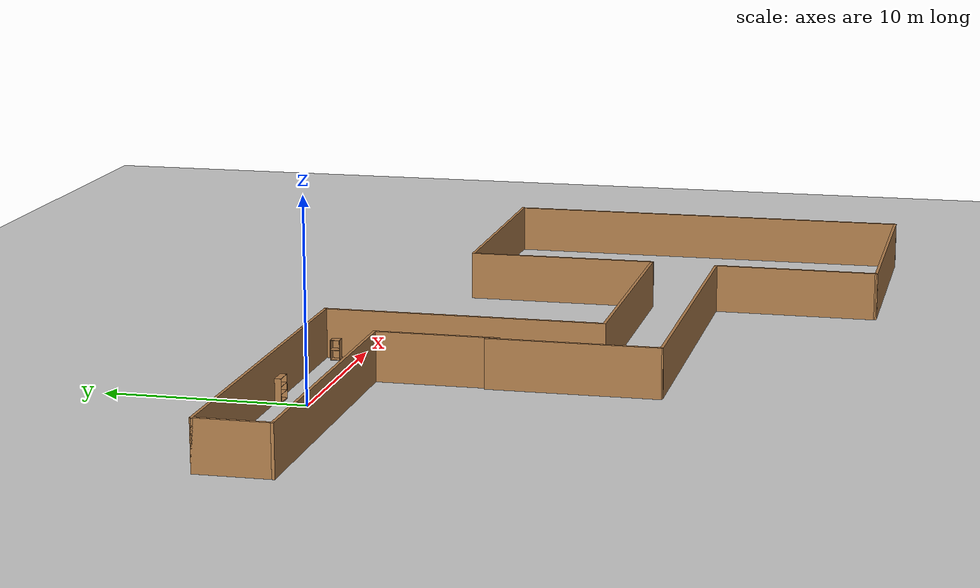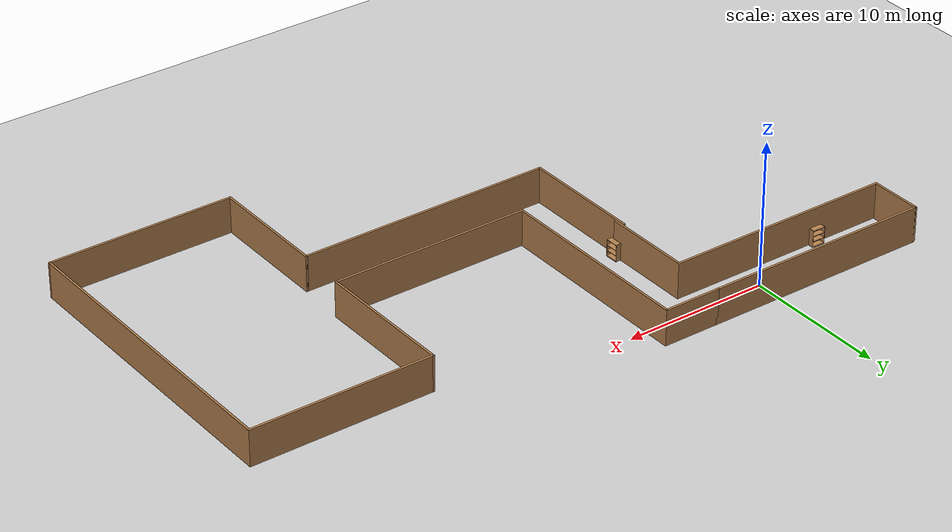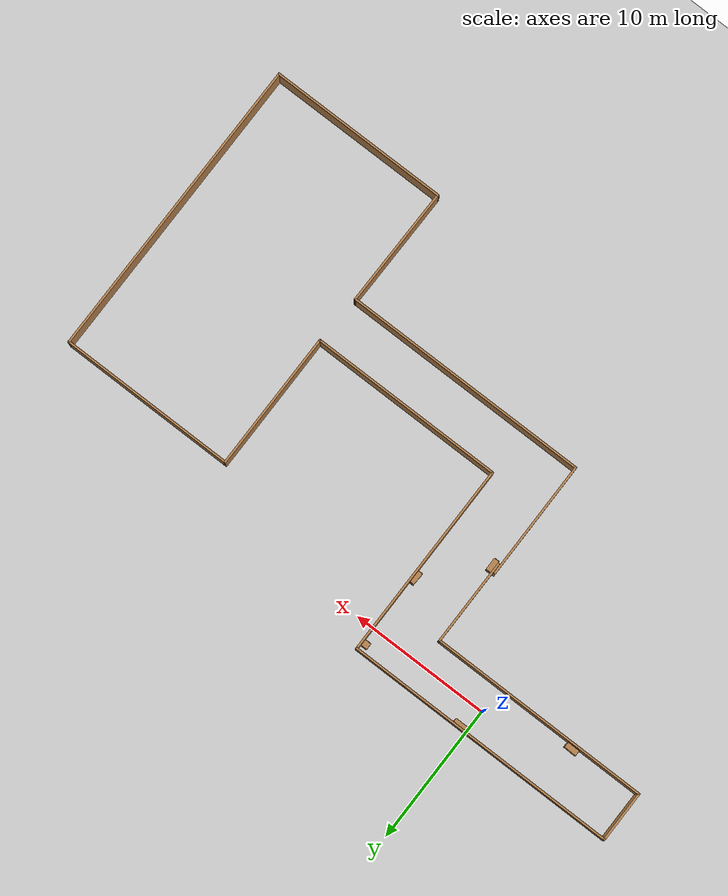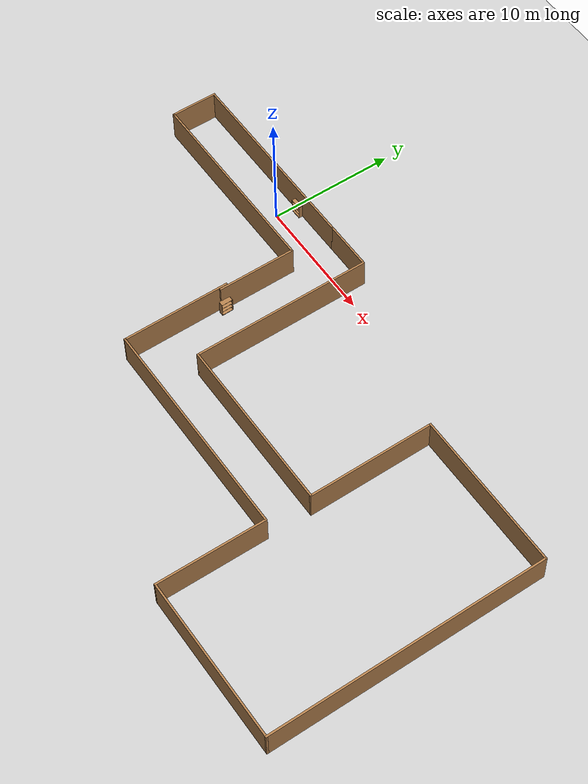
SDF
<sdf version="1.7">
 <world name="default">
  <light name="sun" type="directional">
   <pose>0 0 10 0 -0 0</pose>
   <diffuse>0.8 0.8 0.8 1</diffuse>
   <specular>0.2 0.2 0.2 1</specular>
   <attenuation>
    <range>1000</range>
    <constant>0.9</constant>
    <linear>0.01</linear>
    <quadratic>0.001</quadratic>
   </attenuation>
   <direction>-0.5 0.1 -0.9</direction>
   <spot><inner_angle>0</inner_angle><outer_angle>0</outer_angle><falloff>0</falloff></spot>
  </light>
  <model name="ground_plane">
   <static>1</static>
   <link name="link">
    <collision name="collision">
     <geometry><plane><normal>0 0 1</normal><size>100 100</size></plane></geometry>
     <surface><friction><ode><mu>100</mu><mu2>50</mu2></ode></friction></surface>
    </collision>
    <visual name="visual">
     <cast_shadows>0</cast_shadows>
     <geometry><plane><normal>0 0 1</normal><size>100 100</size></plane></geometry>
     <material>
      <script><uri>file://media/materials/scripts/gazebo.material</uri><name>Gazebo/Grey</name></script>
     </material>
    </visual>
   </link>
  </model>
  <gravity>0 0 -9.8</gravity>
  <magnetic_field>6e-06 2.3e-05 -4.2e-05</magnetic_field>
  <atmosphere type="adiabatic"/>
  <physics type="ode">
   <max_step_size>0.001</max_step_size>
   <real_time_factor>1</real_time_factor>
   <real_time_update_rate>1000</real_time_update_rate>
  </physics>
  <scene><ambient>0.4 0.4 0.4 1</ambient><background>0.7 0.7 0.7 1</background><shadows>1</shadows></scene>
  <audio><device>default</device></audio>
  <spherical_coordinates>
   <surface_model>EARTH_WGS84</surface_model>
   <latitude_deg>0</latitude_deg>
   <longitude_deg>0</longitude_deg>
   <elevation>0</elevation>
   <heading_deg>0</heading_deg>
  </spherical_coordinates>
  <model name="human_follow_project">
   <pose>12.1104 -11.3403 0 0 -0 0</pose>
   <link name="Wall_1">
    <collision name="Wall_1_Collision">
     <geometry><box><size>3.75 0.15 2.5</size></box></geometry>
     <pose>0 0 1.25 0 -0 0</pose>
    </collision>
    <visual name="Wall_1_Visual">
     <pose>0 0 1.25 0 -0 0</pose>
     <geometry><box><size>3.75 0.15 2.5</size></box></geometry>
     <material>
      <script><uri>file://media/materials/scripts/gazebo.material</uri><name>Gazebo/Wood</name></script>
      <ambient>1 1 1 1</ambient>
     </material>
     <meta><layer>0</layer></meta>
    </visual>
    <pose>-23.075 11.2503 0 0 -0 1.5708</pose>
   </link>
   <link name="Wall_10">
    <collision name="Wall_10_Collision">
     <geometry><box><size>10 0.15 2.5</size></box></geometry>
     <pose>0 0 1.25 0 -0 0</pose>
    </collision>
    <visual name="Wall_10_Visual">
     <pose>0 0 1.25 0 -0 0</pose>
     <geometry><box><size>10 0.15 2.5</size></box></geometry>
     <material>
      <script><uri>file://media/materials/scripts/gazebo.material</uri><name>Gazebo/Wood</name></script>
      <ambient>1 1 1 1</ambient>
     </material>
     <meta><layer>0</layer></meta>
    </visual>
    <pose>10.475 3.87526 0 0 -0 1.5708</pose>
   </link>
   <link name="Wall_11">
    <collision name="Wall_11_Collision">
     <geometry><box><size>12.75 0.15 2.5</size></box></geometry>
     <pose>0 0 1.25 0 -0 0</pose>
    </collision>
    <visual name="Wall_11_Visual">
     <pose>0 0 1.25 0 -0 0</pose>
     <geometry><box><size>12.75 0.15 2.5</size></box></geometry>
     <material>
      <script><uri>file://media/materials/scripts/gazebo.material</uri><name>Gazebo/Wood</name></script>
      <ambient>1 1 1 1</ambient>
     </material>
     <meta><layer>0</layer></meta>
    </visual>
    <pose>16.775 8.80026 0 0 -0 0</pose>
   </link>
   <link name="Wall_12">
    <collision name="Wall_12_Collision">
     <geometry><box><size>22 0.15 2.5</size></box></geometry>
     <pose>0 0 1.25 0 -0 0</pose>
    </collision>
    <visual name="Wall_12_Visual">
     <pose>0 0 1.25 0 -0 0</pose>
     <geometry><box><size>22 0.15 2.5</size></box></geometry>
     <material>
      <script><uri>file://media/materials/scripts/gazebo.material</uri><name>Gazebo/Wood</name></script>
      <ambient>1 1 1 1</ambient>
     </material>
     <meta><layer>0</layer></meta>
    </visual>
    <pose>23.075 -2.12474 0 0 -0 -1.5708</pose>
   </link>
   <link name="Wall_13">
    <collision name="Wall_13_Collision">
     <geometry><box><size>13 0.15 2.5</size></box></geometry>
     <pose>0 0 1.25 0 -0 0</pose>
    </collision>
    <visual name="Wall_13_Visual">
     <pose>0 0 1.25 0 -0 0</pose>
     <geometry><box><size>13 0.15 2.5</size></box></geometry>
     <material>
      <script><uri>file://media/materials/scripts/gazebo.material</uri><name>Gazebo/Wood</name></script>
      <ambient>1 1 1 1</ambient>
     </material>
     <meta><layer>0</layer></meta>
    </visual>
    <pose>16.65 -13.0497 0 0 -0 3.14159</pose>
   </link>
   <link name="Wall_14">
    <collision name="Wall_14_Collision">
     <geometry><box><size>8.67267 0.15 2.5</size></box></geometry>
     <pose>0 0 1.25 0 -0 0</pose>
    </collision>
    <visual name="Wall_14_Visual">
     <pose>0 0 1.25 0 -0 0</pose>
     <geometry><box><size>8.67267 0.15 2.5</size></box></geometry>
     <material>
      <script><uri>file://media/materials/scripts/gazebo.material</uri><name>Gazebo/Wood</name></script>
      <ambient>1 1 1 1</ambient>
     </material>
     <meta><layer>0</layer></meta>
    </visual>
    <pose>10.2659 -8.78841 0 0 -0 1.5612</pose>
   </link>
   <link name="Wall_15">
    <collision name="Wall_15_Collision">
     <geometry><box><size>17.75 0.15 2.5</size></box></geometry>
     <pose>0 0 1.25 0 -0 0</pose>
    </collision>
    <visual name="Wall_15_Visual">
     <pose>0 0 1.25 0 -0 0</pose>
     <geometry><box><size>17.75 0.15 2.5</size></box></geometry>
     <material>
      <script><uri>file://media/materials/scripts/gazebo.material</uri><name>Gazebo/Wood</name></script>
      <ambient>1 1 1 1</ambient>
     </material>
     <meta><layer>0</layer></meta>
    </visual>
    <pose>1.425 -4.52707 0 0 -0 3.14159</pose>
   </link>
   <link name="Wall_19">
    <collision name="Wall_19_Collision">
     <geometry><box><size>8.59308 0.15 2.5</size></box></geometry>
     <pose>0 0 1.25 0 -0 0</pose>
    </collision>
    <visual name="Wall_19_Visual">
     <pose>0 0 1.25 0 -0 0</pose>
     <geometry><box><size>8.59308 0.15 2.5</size></box></geometry>
     <material>
      <script><uri>file://media/materials/scripts/gazebo.material</uri><name>Gazebo/Wood</name></script>
      <ambient>1 1 1 1</ambient>
     </material>
     <meta><layer>0</layer></meta>
    </visual>
    <pose>-7.38412 -0.305539 0 0 -0 -1.56864</pose>
   </link>
   <link name="Wall_2">
    <collision name="Wall_2_Collision">
     <geometry><box><size>16 0.15 2.5</size></box></geometry>
     <pose>0 0 1.25 0 -0 0</pose>
    </collision>
    <visual name="Wall_2_Visual">
     <pose>0 0 1.25 0 -0 0</pose>
     <geometry><box><size>16 0.15 2.5</size></box></geometry>
     <material>
      <script><uri>file://media/materials/scripts/gazebo.material</uri><name>Gazebo/Wood</name></script>
      <ambient>1 1 1 1</ambient>
     </material>
     <meta><layer>0</layer></meta>
    </visual>
    <pose>-15.15 13.0503 0 0 -0 0</pose>
   </link>
   <link name="Wall_4">
    <collision name="Wall_4_Collision">
     <geometry><box><size>16 0.15 2.5</size></box></geometry>
     <pose>0 0 1.25 0 -0 0</pose>
    </collision>
    <visual name="Wall_4_Visual">
     <pose>0 0 1.25 0 -0 0</pose>
     <geometry><box><size>16 0.15 2.5</size></box></geometry>
     <material>
      <script><uri>file://media/materials/scripts/gazebo.material</uri><name>Gazebo/Wood</name></script>
      <ambient>1 1 1 1</ambient>
     </material>
     <meta><layer>0</layer></meta>
    </visual>
    <pose>-15.15 9.45026 0 0 -0 0</pose>
   </link>
   <link name="Wall_5">
    <collision name="Wall_5_Collision">
     <geometry><box><size>6.25 0.15 2.5</size></box></geometry>
     <pose>0 0 1.25 0 -0 0</pose>
    </collision>
    <visual name="Wall_5_Visual">
     <pose>0 0 1.25 0 -0 0</pose>
     <geometry><box><size>6.25 0.15 2.5</size></box></geometry>
     <material>
      <script><uri>file://media/materials/scripts/gazebo.material</uri><name>Gazebo/Wood</name></script>
      <ambient>1 1 1 1</ambient>
     </material>
     <meta><layer>0</layer></meta>
    </visual>
    <pose>-7.225 6.40026 0 0 -0 -1.5708</pose>
   </link>
   <link name="Wall_7">
    <collision name="Wall_7_Collision">
     <geometry><box><size>4 0.15 2.5</size></box></geometry>
     <pose>0 0 1.25 0 -0 0</pose>
    </collision>
    <visual name="Wall_7_Visual">
     <pose>0 0 1.25 0 -0 0</pose>
     <geometry><box><size>4 0.15 2.5</size></box></geometry>
     <material>
      <script><uri>file://media/materials/scripts/gazebo.material</uri><name>Gazebo/Wood</name></script>
      <ambient>1 1 1 1</ambient>
     </material>
     <meta><layer>0</layer></meta>
    </visual>
    <pose>-5.3 13.0503 0 0 -0 0</pose>
   </link>
   <link name="Wall_8">
    <collision name="Wall_8_Collision">
     <geometry><box><size>14.25 0.15 2.5</size></box></geometry>
     <pose>0 0 1.25 0 -0 0</pose>
    </collision>
    <visual name="Wall_8_Visual">
     <pose>0 0 1.25 0 -0 0</pose>
     <geometry><box><size>14.25 0.15 2.5</size></box></geometry>
     <material>
      <script><uri>file://media/materials/scripts/gazebo.material</uri><name>Gazebo/Wood</name></script>
      <ambient>1 1 1 1</ambient>
     </material>
     <meta><layer>0</layer></meta>
    </visual>
    <pose>-3.375 6.00026 0 0 -0 -1.5708</pose>
   </link>
   <link name="Wall_9">
    <collision name="Wall_9_Collision">
     <geometry><box><size>14 0.15 2.5</size></box></geometry>
     <pose>0 0 1.25 0 -0 0</pose>
    </collision>
    <visual name="Wall_9_Visual">
     <pose>0 0 1.25 0 -0 0</pose>
     <geometry><box><size>14 0.15 2.5</size></box></geometry>
     <material>
      <script><uri>file://media/materials/scripts/gazebo.material</uri><name>Gazebo/Wood</name></script>
      <ambient>1 1 1 1</ambient>
     </material>
     <meta><layer>0</layer></meta>
    </visual>
    <pose>3.55 -1.04974 0 0 -0 0</pose>
   </link>
   <static>1</static>
  </model>
  <model name="bookshelf">
   <static>1</static>
   <link name="link">
    <inertial><mass>1</mass></inertial>
    <collision name="back">
     <pose>0 0.005 0.6 0 -0 0</pose>
     <geometry><box><size>0.9 0.01 1.2</size></box></geometry>
    </collision>
    <visual name="visual1">
     <pose>0 0.005 0.6 0 -0 0</pose>
     <geometry><box><size>0.9 0.01 1.2</size></box></geometry>
     <material>
      <script><uri>file://media/materials/scripts/gazebo.material</uri><name>Gazebo/Wood</name></script>
     </material>
    </visual>
    <collision name="left_side">
     <pose>0.45 -0.195 0.6 0 -0 0</pose>
     <geometry><box><size>0.02 0.4 1.2</size></box></geometry>
    </collision>
    <visual name="visual2">
     <pose>0.45 -0.195 0.6 0 -0 0</pose>
     <geometry><box><size>0.02 0.4 1.2</size></box></geometry>
     <material>
      <script><uri>file://media/materials/scripts/gazebo.material</uri><name>Gazebo/Wood</name></script>
     </material>
    </visual>
    <collision name="right_side">
     <pose>-0.45 -0.195 0.6 0 -0 0</pose>
     <geometry><box><size>0.02 0.4 1.2</size></box></geometry>
    </collision>
    <visual name="visual3">
     <pose>-0.45 -0.195 0.6 0 -0 0</pose>
     <geometry><box><size>0.02 0.4 1.2</size></box></geometry>
     <material>
      <script><uri>file://media/materials/scripts/gazebo.material</uri><name>Gazebo/Wood</name></script>
     </material>
    </visual>
    <collision name="bottom">
     <pose>0 -0.195 0.03 0 -0 0</pose>
     <geometry><box><size>0.88 0.4 0.06</size></box></geometry>
    </collision>
    <visual name="visual4">
     <pose>0 -0.195 0.03 0 -0 0</pose>
     <geometry><box><size>0.88 0.4 0.06</size></box></geometry>
     <material>
      <script><uri>file://media/materials/scripts/gazebo.material</uri><name>Gazebo/Wood</name></script>
     </material>
    </visual>
    <collision name="top">
     <pose>0 -0.195 1.19 0 -0 0</pose>
     <geometry><box><size>0.88 0.4 0.02</size></box></geometry>
    </collision>
    <visual name="visual5">
     <pose>0 -0.195 1.19 0 -0 0</pose>
     <geometry><box><size>0.88 0.4 0.02</size></box></geometry>
     <material>
      <script><uri>file://media/materials/scripts/gazebo.material</uri><name>Gazebo/Wood</name></script>
     </material>
    </visual>
    <collision name="low_shelf">
     <pose>0 -0.195 0.43 0 -0 0</pose>
     <geometry><box><size>0.88 0.4 0.02</size></box></geometry>
    </collision>
    <visual name="visual6">
     <pose>0 -0.195 0.43 0 -0 0</pose>
     <geometry><box><size>0.88 0.4 0.02</size></box></geometry>
     <material>
      <script><uri>file://media/materials/scripts/gazebo.material</uri><name>Gazebo/Wood</name></script>
     </material>
    </visual>
    <collision name="high_shelf">
     <pose>0 -0.195 0.8 0 -0 0</pose>
     <geometry><box><size>0.88 0.4 0.02</size></box></geometry>
    </collision>
    <visual name="visual7">
     <pose>0 -0.195 0.8 0 -0 0</pose>
     <geometry><box><size>0.88 0.4 0.02</size></box></geometry>
     <material>
      <script><uri>file://media/materials/scripts/gazebo.material</uri><name>Gazebo/Wood</name></script>
     </material>
    </visual>
   </link>
   <pose>0.602459 1.71148 0 0 -0 0</pose>
  </model>
  <model name="cabinet">
   <static>1</static>
   <link name="cabinet_bottom_plate">
    <inertial>
     <pose>0 0 -1 0 -0 0</pose>
     <inertia><ixx>2.05</ixx><ixy>0</ixy><ixz>0</ixz><iyy>2.05</iyy><iyz>0</iyz><izz>2.05</izz></inertia>
     <mass>25</mass>
    </inertial>
    <collision name="cabinet_bottom_plate_geom">
     <pose>0 0 0.01 0 -0 0</pose>
     <geometry><box><size>0.45 0.45 0.02</size></box></geometry>
    </collision>
    <visual name="cabinet_bottom_plate_geom_visual">
     <pose>0 0 0.01 0 -0 0</pose>
     <geometry><box><size>0.45 0.45 0.02</size></box></geometry>
     <material>
      <script><uri>file://media/materials/scripts/gazebo.material</uri><name>Gazebo/Wood</name></script>
     </material>
    </visual>
    <collision name="cabinet_bottom_plate_geom_cabinet_back_plate">
     <pose>0.235 0 0.51 0 -0 0</pose>
     <geometry><box><size>0.02 0.45 1.02</size></box></geometry>
    </collision>
    <visual name="cabinet_bottom_plate_geom_cabinet_back_plate_visual">
     <pose>0.235 0 0.51 0 -0 0</pose>
     <geometry><box><size>0.02 0.45 1.02</size></box></geometry>
     <material>
      <script><uri>file://media/materials/scripts/gazebo.material</uri><name>Gazebo/Wood</name></script>
     </material>
    </visual>
    <collision name="cabinet_bottom_plate_geom_cabinet_left_plate">
     <pose>0 0.235 0.51 0 -0 0</pose>
     <geometry><box><size>0.45 0.02 1.02</size></box></geometry>
    </collision>
    <visual name="cabinet_bottom_plate_geom_cabinet_left_plate_visual">
     <pose>0 0.235 0.51 0 -0 0</pose>
     <geometry><box><size>0.45 0.02 1.02</size></box></geometry>
     <material>
      <script><uri>file://media/materials/scripts/gazebo.material</uri><name>Gazebo/Wood</name></script>
     </material>
    </visual>
    <collision name="cabinet_bottom_plate_geom_cabinet_middle_plate">
     <pose>0 0 0.51 0 -0 0</pose>
     <geometry><box><size>0.45 0.45 0.02</size></box></geometry>
    </collision>
    <visual name="cabinet_bottom_plate_geom_cabinet_middle_plate_visual">
     <pose>0 0 0.51 0 -0 0</pose>
     <geometry><box><size>0.45 0.45 0.02</size></box></geometry>
     <material>
      <script><uri>file://media/materials/scripts/gazebo.material</uri><name>Gazebo/Wood</name></script>
     </material>
    </visual>
    <collision name="cabinet_bottom_plate_geom_cabinet_right_plate">
     <pose>0 -0.235 0.51 0 -0 0</pose>
     <geometry><box><size>0.45 0.02 1.02</size></box></geometry>
    </collision>
    <visual name="cabinet_bottom_plate_geom_cabinet_right_plate_visual">
     <pose>0 -0.235 0.51 0 -0 0</pose>
     <geometry><box><size>0.45 0.02 1.02</size></box></geometry>
     <material>
      <script><uri>file://media/materials/scripts/gazebo.material</uri><name>Gazebo/Wood</name></script>
     </material>
    </visual>
    <collision name="cabinet_bottom_plate_geom_cabinet_top_plate">
     <pose>0 0 1.01 0 -0 0</pose>
     <geometry><box><size>0.45 0.45 0.02</size></box></geometry>
    </collision>
    <visual name="cabinet_bottom_plate_geom_cabinet_top_plate_visual">
     <pose>0 0 1.01 0 -0 0</pose>
     <geometry><box><size>0.45 0.45 0.02</size></box></geometry>
     <material>
      <script><uri>file://media/materials/scripts/gazebo.material</uri><name>Gazebo/Wood</name></script>
     </material>
    </visual>
   </link>
   <pose>8.44255 1.11778 0 0 -0 0</pose>
  </model>
  <model name="bookshelf_0">
   <static>1</static>
   <link name="link">
    <inertial><mass>1</mass></inertial>
    <collision name="back">
     <pose>0 0.005 0.6 0 -0 0</pose>
     <geometry><box><size>0.9 0.01 1.2</size></box></geometry>
    </collision>
    <visual name="visual1">
     <pose>0 0.005 0.6 0 -0 0</pose>
     <geometry><box><size>0.9 0.01 1.2</size></box></geometry>
     <material>
      <script><uri>file://media/materials/scripts/gazebo.material</uri><name>Gazebo/Wood</name></script>
     </material>
    </visual>
    <collision name="left_side">
     <pose>0.45 -0.195 0.6 0 -0 0</pose>
     <geometry><box><size>0.02 0.4 1.2</size></box></geometry>
    </collision>
    <visual name="visual2">
     <pose>0.45 -0.195 0.6 0 -0 0</pose>
     <geometry><box><size>0.02 0.4 1.2</size></box></geometry>
     <material>
      <script><uri>file://media/materials/scripts/gazebo.material</uri><name>Gazebo/Wood</name></script>
     </material>
    </visual>
    <collision name="right_side">
     <pose>-0.45 -0.195 0.6 0 -0 0</pose>
     <geometry><box><size>0.02 0.4 1.2</size></box></geometry>
    </collision>
    <visual name="visual3">
     <pose>-0.45 -0.195 0.6 0 -0 0</pose>
     <geometry><box><size>0.02 0.4 1.2</size></box></geometry>
     <material>
      <script><uri>file://media/materials/scripts/gazebo.material</uri><name>Gazebo/Wood</name></script>
     </material>
    </visual>
    <collision name="bottom">
     <pose>0 -0.195 0.03 0 -0 0</pose>
     <geometry><box><size>0.88 0.4 0.06</size></box></geometry>
    </collision>
    <visual name="visual4">
     <pose>0 -0.195 0.03 0 -0 0</pose>
     <geometry><box><size>0.88 0.4 0.06</size></box></geometry>
     <material>
      <script><uri>file://media/materials/scripts/gazebo.material</uri><name>Gazebo/Wood</name></script>
     </material>
    </visual>
    <collision name="top">
     <pose>0 -0.195 1.19 0 -0 0</pose>
     <geometry><box><size>0.88 0.4 0.02</size></box></geometry>
    </collision>
    <visual name="visual5">
     <pose>0 -0.195 1.19 0 -0 0</pose>
     <geometry><box><size>0.88 0.4 0.02</size></box></geometry>
     <material>
      <script><uri>file://media/materials/scripts/gazebo.material</uri><name>Gazebo/Wood</name></script>
     </material>
    </visual>
    <collision name="low_shelf">
     <pose>0 -0.195 0.43 0 -0 0</pose>
     <geometry><box><size>0.88 0.4 0.02</size></box></geometry>
    </collision>
    <visual name="visual6">
     <pose>0 -0.195 0.43 0 -0 0</pose>
     <geometry><box><size>0.88 0.4 0.02</size></box></geometry>
     <material>
      <script><uri>file://media/materials/scripts/gazebo.material</uri><name>Gazebo/Wood</name></script>
     </material>
    </visual>
    <collision name="high_shelf">
     <pose>0 -0.195 0.8 0 -0 0</pose>
     <geometry><box><size>0.88 0.4 0.02</size></box></geometry>
    </collision>
    <visual name="visual7">
     <pose>0 -0.195 0.8 0 -0 0</pose>
     <geometry><box><size>0.88 0.4 0.02</size></box></geometry>
     <material>
      <script><uri>file://media/materials/scripts/gazebo.material</uri><name>Gazebo/Wood</name></script>
     </material>
    </visual>
   </link>
   <pose>-5.95786 -1.80932 0 0 -0 3.11207</pose>
  </model>
  <model name="bookshelf_1">
   <static>1</static>
   <link name="link">
    <inertial><mass>1</mass></inertial>
    <collision name="back">
     <pose>0 0.005 0.6 0 -0 0</pose>
     <geometry><box><size>0.9 0.01 1.2</size></box></geometry>
    </collision>
    <visual name="visual1">
     <pose>0 0.005 0.6 0 -0 0</pose>
     <geometry><box><size>0.9 0.01 1.2</size></box></geometry>
     <material>
      <script><uri>file://media/materials/scripts/gazebo.material</uri><name>Gazebo/Wood</name></script>
     </material>
    </visual>
    <collision name="left_side">
     <pose>0.45 -0.195 0.6 0 -0 0</pose>
     <geometry><box><size>0.02 0.4 1.2</size></box></geometry>
    </collision>
    <visual name="visual2">
     <pose>0.45 -0.195 0.6 0 -0 0</pose>
     <geometry><box><size>0.02 0.4 1.2</size></box></geometry>
     <material>
      <script><uri>file://media/materials/scripts/gazebo.material</uri><name>Gazebo/Wood</name></script>
     </material>
    </visual>
    <collision name="right_side">
     <pose>-0.45 -0.195 0.6 0 -0 0</pose>
     <geometry><box><size>0.02 0.4 1.2</size></box></geometry>
    </collision>
    <visual name="visual3">
     <pose>-0.45 -0.195 0.6 0 -0 0</pose>
     <geometry><box><size>0.02 0.4 1.2</size></box></geometry>
     <material>
      <script><uri>file://media/materials/scripts/gazebo.material</uri><name>Gazebo/Wood</name></script>
     </material>
    </visual>
    <collision name="bottom">
     <pose>0 -0.195 0.03 0 -0 0</pose>
     <geometry><box><size>0.88 0.4 0.06</size></box></geometry>
    </collision>
    <visual name="visual4">
     <pose>0 -0.195 0.03 0 -0 0</pose>
     <geometry><box><size>0.88 0.4 0.06</size></box></geometry>
     <material>
      <script><uri>file://media/materials/scripts/gazebo.material</uri><name>Gazebo/Wood</name></script>
     </material>
    </visual>
    <collision name="top">
     <pose>0 -0.195 1.19 0 -0 0</pose>
     <geometry><box><size>0.88 0.4 0.02</size></box></geometry>
    </collision>
    <visual name="visual5">
     <pose>0 -0.195 1.19 0 -0 0</pose>
     <geometry><box><size>0.88 0.4 0.02</size></box></geometry>
     <material>
      <script><uri>file://media/materials/scripts/gazebo.material</uri><name>Gazebo/Wood</name></script>
     </material>
    </visual>
    <collision name="low_shelf">
     <pose>0 -0.195 0.43 0 -0 0</pose>
     <geometry><box><size>0.88 0.4 0.02</size></box></geometry>
    </collision>
    <visual name="visual6">
     <pose>0 -0.195 0.43 0 -0 0</pose>
     <geometry><box><size>0.88 0.4 0.02</size></box></geometry>
     <material>
      <script><uri>file://media/materials/scripts/gazebo.material</uri><name>Gazebo/Wood</name></script>
     </material>
    </visual>
    <collision name="high_shelf">
     <pose>0 -0.195 0.8 0 -0 0</pose>
     <geometry><box><size>0.88 0.4 0.02</size></box></geometry>
    </collision>
    <visual name="visual7">
     <pose>0 -0.195 0.8 0 -0 0</pose>
     <geometry><box><size>0.88 0.4 0.02</size></box></geometry>
     <material>
      <script><uri>file://media/materials/scripts/gazebo.material</uri><name>Gazebo/Wood</name></script>
     </material>
    </visual>
   </link>
   <pose>8.74728 -4.20868 0 0 0 -1.61037</pose>
  </model>
  <model name="bookshelf_2">
   <static>1</static>
   <link name="link">
    <inertial><mass>1</mass></inertial>
    <collision name="back">
     <pose>0 0.005 0.6 0 -0 0</pose>
     <geometry><box><size>0.9 0.01 1.2</size></box></geometry>
    </collision>
    <visual name="visual1">
     <pose>0 0.005 0.6 0 -0 0</pose>
     <geometry><box><size>0.9 0.01 1.2</size></box></geometry>
     <material>
      <script><uri>file://media/materials/scripts/gazebo.material</uri><name>Gazebo/Wood</name></script>
     </material>
    </visual>
    <collision name="left_side">
     <pose>0.45 -0.195 0.6 0 -0 0</pose>
     <geometry><box><size>0.02 0.4 1.2</size></box></geometry>
    </collision>
    <visual name="visual2">
     <pose>0.45 -0.195 0.6 0 -0 0</pose>
     <geometry><box><size>0.02 0.4 1.2</size></box></geometry>
     <material>
      <script><uri>file://media/materials/scripts/gazebo.material</uri><name>Gazebo/Wood</name></script>
     </material>
    </visual>
    <collision name="right_side">
     <pose>-0.45 -0.195 0.6 0 -0 0</pose>
     <geometry><box><size>0.02 0.4 1.2</size></box></geometry>
    </collision>
    <visual name="visual3">
     <pose>-0.45 -0.195 0.6 0 -0 0</pose>
     <geometry><box><size>0.02 0.4 1.2</size></box></geometry>
     <material>
      <script><uri>file://media/materials/scripts/gazebo.material</uri><name>Gazebo/Wood</name></script>
     </material>
    </visual>
    <collision name="bottom">
     <pose>0 -0.195 0.03 0 -0 0</pose>
     <geometry><box><size>0.88 0.4 0.06</size></box></geometry>
    </collision>
    <visual name="visual4">
     <pose>0 -0.195 0.03 0 -0 0</pose>
     <geometry><box><size>0.88 0.4 0.06</size></box></geometry>
     <material>
      <script><uri>file://media/materials/scripts/gazebo.material</uri><name>Gazebo/Wood</name></script>
     </material>
    </visual>
    <collision name="top">
     <pose>0 -0.195 1.19 0 -0 0</pose>
     <geometry><box><size>0.88 0.4 0.02</size></box></geometry>
    </collision>
    <visual name="visual5">
     <pose>0 -0.195 1.19 0 -0 0</pose>
     <geometry><box><size>0.88 0.4 0.02</size></box></geometry>
     <material>
      <script><uri>file://media/materials/scripts/gazebo.material</uri><name>Gazebo/Wood</name></script>
     </material>
    </visual>
    <collision name="low_shelf">
     <pose>0 -0.195 0.43 0 -0 0</pose>
     <geometry><box><size>0.88 0.4 0.02</size></box></geometry>
    </collision>
    <visual name="visual6">
     <pose>0 -0.195 0.43 0 -0 0</pose>
     <geometry><box><size>0.88 0.4 0.02</size></box></geometry>
     <material>
      <script><uri>file://media/materials/scripts/gazebo.material</uri><name>Gazebo/Wood</name></script>
     </material>
    </visual>
    <collision name="high_shelf">
     <pose>0 -0.195 0.8 0 -0 0</pose>
     <geometry><box><size>0.88 0.4 0.02</size></box></geometry>
    </collision>
    <visual name="visual7">
     <pose>0 -0.195 0.8 0 -0 0</pose>
     <geometry><box><size>0.88 0.4 0.02</size></box></geometry>
     <material>
      <script><uri>file://media/materials/scripts/gazebo.material</uri><name>Gazebo/Wood</name></script>
     </material>
    </visual>
   </link>
   <pose>4.94447 -7.8034 -0 0 -0 1.58409</pose>
  </model>
 </world>
</sdf>
